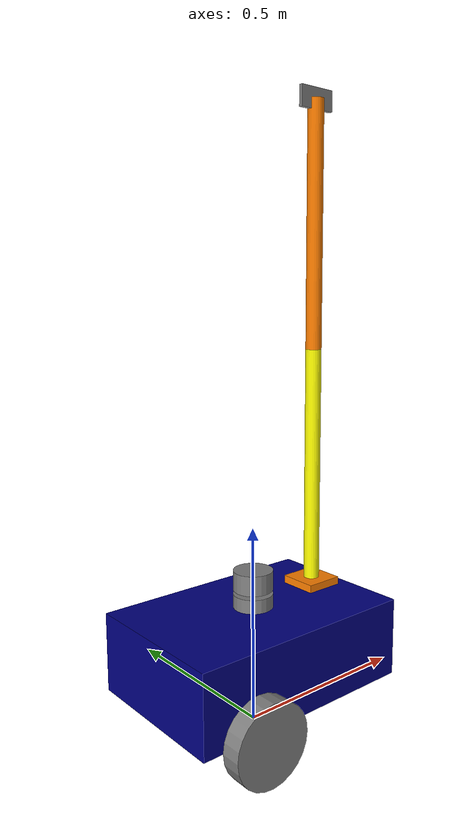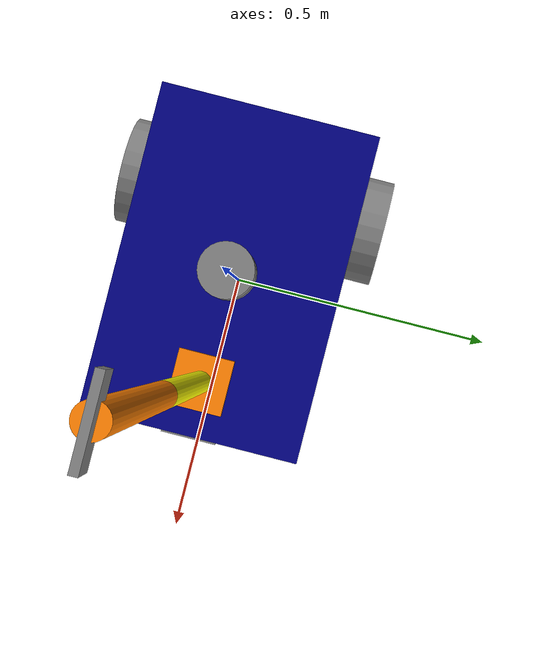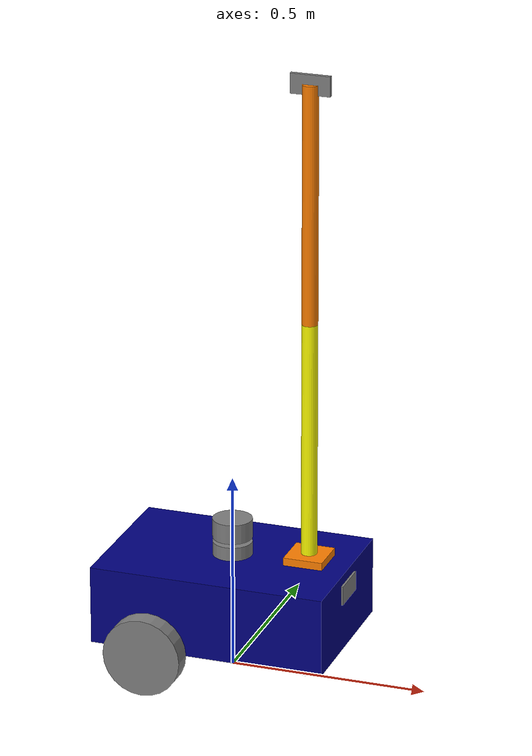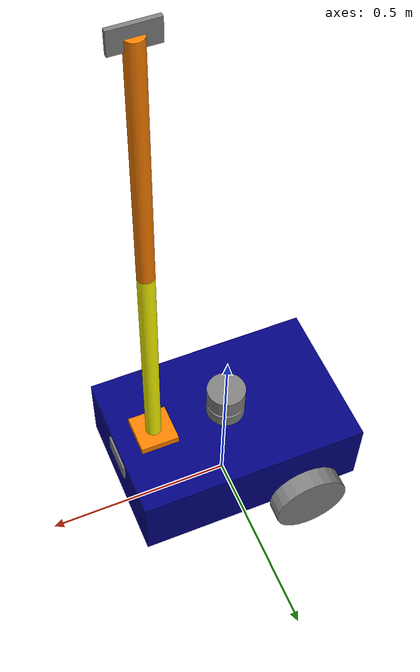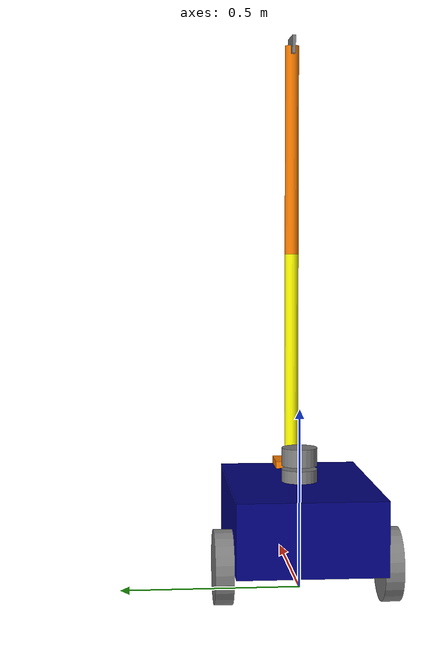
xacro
<?xml version="1.0"?>
<robot name="my_robot" xmlns:xacro="http://www.ros.org/wiki/xacro">

   <link name="base_footprint" />
    <xacro:include filename="common_properties.xacro" />
    <xacro:include filename="mobile_base.xacro" />
    <xacro:include filename="mobile_base_gazebo.xacro" />

    <xacro:include filename="camera.xacro" />
    <xacro:include filename="camera2.xacro" />
    <xacro:include filename="lidar.xacro" />
    <xacro:include filename="lidar2.xacro" />

    <xacro:include filename="arm.xacro" />
    <xacro:include filename="arm_gazebo.xacro" />

    <joint name="mobilebasearm_joint" type="fixed">
         <parent link="base_link"/>
         <child link="arm_base_link" />
         <origin xyz="0.2 0 ${base_height + 0.01}" rpy="0 0 ${pi / 2.0} " />
     </joint>

</robot>

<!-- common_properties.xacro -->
<robot xmlns:xacro="http://www.ros.org/wiki/xacro">

    <material name="blue">
        <color rgba="0 0 0.5 1" />
    </material>

    <material name="grey">
        <color rgba="0.5 0.5 0.5 1" />
    </material>

        <material name="red">
        <color rgba="0.5 0 0 1" />
    </material>

    <material name="orange">
  <color rgba="1 0.5 0 1"/>
</material>

<material name="yellow">
  <color rgba="1 1 0 1"/>
</material>

    <xacro:macro name="box_inertia" params="m l w h xyz rpy">
      <inertial>
        <origin xyz="${xyz}" rpy="${rpy}" />
        <mass value="${m}" />
        <inertia ixx="${(m/12) * (h*h +l*l)}" ixy="0" ixz="0"
                 iyy="${(m/12) * (w*w +l*l)}" iyz="0"
                 izz="${(m/12) * (w*w +h*h)}" />
      </inertial>
    </xacro:macro>

    <xacro:macro name="cylinder_inertia" params="m r h xyz rpy">
        <inertial>
            <origin xyz="${xyz}" rpy="${rpy}" />
            <mass value="${m}" />
            <inertia ixx="${(m/12) * (3*r*r + h*h)}" ixy="0" ixz="0"
                     iyy="${(m/12) * (3*r*r + h*h)}" iyz="0"
                     izz="${(m/2) * (r*r)}" />
        </inertial>
    </xacro:macro>

    <xacro:macro name="sphere_inertia" params="m r xyz rpy">
        <inertial>
            <origin xyz="${xyz}" rpy="${rpy}" />
            <mass value="${m}" />
            <inertia ixx="${(2/5) * m * r * r}" ixy="0" ixz="0"
                     iyy="${(2/5) * m * r * r}" iyz="0"
                     izz="${(2/5) * m * r * r}" />
        </inertial>
    </xacro:macro>

</robot>

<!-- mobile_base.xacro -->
<robot xmlns:xacro="http://www.ros.org/wiki/xacro">

    <xacro:property name="base_length" value="0.6" />
    <xacro:property name="base_width" value="0.4" />
    <xacro:property name="base_height" value="0.2" />
    <xacro:property name="wheel_radius" value="0.1" />
    <xacro:property name="wheel_length" value="0.05" />

    <link name="base_link">
        <visual>
            <geometry>
                <box size="${base_length} ${base_width} ${base_height}" />
            </geometry>
            <origin xyz="0 0 ${base_height / 2.0}" rpy="0 0 0" />
            <material name="blue" />
        </visual>
        <collision>
            <geometry>
                <box size="${base_length} ${base_width} ${base_height}" />
            </geometry>
            <origin xyz="0 0 ${base_height / 2.0}" rpy="0 0 0" />
        </collision>
        <xacro:box_inertia m="5.0" l="${2*base_length}" w="${2*base_width}" h="${2*base_height}"
                           xyz="0 0 ${base_height / 2.0}" rpy="0 0 0" />
    </link>

    <xacro:macro name="wheel_link" params="prefix">
        <link name="${prefix}_wheel_link">
            <visual>
                <geometry>
                    <cylinder radius="${wheel_radius}" length="${wheel_length}" />
                </geometry>
                <origin xyz="0 0 0" rpy="${pi / 2.0} 0 0" />
                <material name="grey" />
            </visual>
            <collision>
                <geometry>
                    <cylinder radius="${wheel_radius}" length="${wheel_length}" />
                </geometry>
                <origin xyz="0 0 0" rpy="${pi / 2.0} 0 0" />
            </collision>
            <xacro:cylinder_inertia m="1.0" r="${2*wheel_radius}" h="${2*wheel_length}"
                                    xyz="0 0 0" rpy="${pi / 2.0} 0 0" />
        </link>
    </xacro:macro>

    <xacro:wheel_link prefix="right" />
    <xacro:wheel_link prefix="left" />

    <link name="caster_wheel_link">
        <visual>
            <geometry>
                <sphere radius="${wheel_radius / 2.0}" />
            </geometry>
            <origin xyz="0 0 0" rpy="0 0 0" />
            <material name="grey" />
        </visual>
        <collision>
            <geometry>
                <sphere radius="${wheel_radius / 2.0}" />
            </geometry>
            <origin xyz="0 0 0" rpy="0 0 0" />
        </collision>
        <xacro:sphere_inertia m="0.5" r="${2*wheel_radius / 2.0}"
                              xyz="0 0 0" rpy="0 0 0" />
    </link>

    <joint name="base_joint" type="fixed">
        <parent link="base_footprint" />
        <child link="base_link" />
        <origin xyz="0 0 ${wheel_radius}" rpy="0 0 0"/>
    </joint>

    <joint name="base_right_wheel_joint" type="continuous">
        <parent link="base_link" />
        <child link="right_wheel_link" />
        <origin xyz="${-base_length / 4.0} ${-(base_width + wheel_length) / 2.0} 0" rpy="0 0 0" />
        <axis xyz="0 1 0" />
    </joint>

    <joint name="base_left_wheel_joint" type="continuous">
        <parent link="base_link" />
        <child link="left_wheel_link" />
        <origin xyz="${-base_length / 4.0} ${(base_width + wheel_length) / 2.0} 0" rpy="0 0 0" />
        <axis xyz="0 1 0" />
    </joint>

    <joint name="base_caster_wheel_joint" type="fixed">
        <parent link="base_link" />
        <child link="caster_wheel_link" />
        <origin xyz="${base_length / 3.0} 0 ${-wheel_radius / 2.0}" rpy="0 0 0" />
    </joint>

</robot>

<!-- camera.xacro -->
<robot xmlns:xacro="http://www.ros.org/wiki/xacro">

    <xacro:property name="camera_length" value="0.01"/>
    <xacro:property name="camera_width" value="0.1"/>
    <xacro:property name="camera_height" value="0.05"/>

     <link name="camera_link">
        <visual>
            <geometry>
                <box size="${camera_length} ${camera_width} ${camera_height}"/>
            </geometry>
            <material name="grey"/>
        </visual>
        <collision>
            <geometry>
                <box size="${camera_length} ${camera_width} ${camera_height}"/>
            </geometry>
        </collision>
        <xacro:box_inertia m="0.1" l="${camera_length}" w="${camera_width}" h="${camera_height}"
                           xyz="0 0 0" rpy="0 0 0"/>

     </link>

     <joint name="base_camera_joint" type="revolute">

         <parent link="hand_link"/>
         <child link="camera_link" />
         <origin xyz="0 0 0.6 " rpy="0 ${pi*2} 0" />
         <axis xyz="0 -1 0" />
        <limit lower="0" upper="${pi*2}" effort="200" velocity="100" />
        <dynamics friction="3.05" damping="1.0" />
     </joint>

     <link name="camera_link_optical">
     </link>

    <joint name="camera_optical_joint" type="fixed">
       <!-- these values have to be these values otherwise the gazebo camera
        image won't be aligned properly with the frame it is supposedly
        originating from -->
        <origin xyz="0 0 0" rpy="${-pi/2} 0 ${-pi/2}"/>
        <parent link="camera_link"/>
        <child link="camera_link_optical"/>
    </joint>

     <gazebo reference="camera_link">
     <material>Gazebo/ZincYellow</material>
     <sensor name="camera_sensor" type="camera">
     <pose>0 0 0 0 0 0</pose>
     <visualize>true</visualize>
     <update_rate>10.0</update_rate>

      <camera>
       <horizontal_fov>1.3962634</horizontal_fov>
       <image>
         <width>1280</width>
         <height>720</height>
         <format>R8G8B8</format>
       </image>
      </camera>

     <plugin name="camera_controller" filename="libgazebo_ros_camera.so">
      <frame_name>camera_link_optical</frame_name>
     </plugin>
     </sensor>
    </gazebo>

</robot>

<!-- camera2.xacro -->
<robot xmlns:xacro="http://www.ros.org/wiki/xacro">

    <xacro:property name="camera_length" value="0.01"/>
    <xacro:property name="camera_width" value="0.1"/>
    <xacro:property name="camera_height" value="0.05"/>

     <link name="camera_link2">
        <visual>
            <geometry>
                <box size="${camera_length} ${camera_width} ${camera_height}"/>
            </geometry>
            <material name="grey"/>
        </visual>
        <collision>
            <geometry>
                <box size="${camera_length} ${camera_width} ${camera_height}"/>
            </geometry>
        </collision>
        <xacro:box_inertia m="0.1" l="${camera_length}" w="${camera_width}" h="${camera_height}"
                           xyz="0 0 0" rpy="0 0 0"/>

     </link>

     <joint name="base_camera_joint2" type="fixed">

         <parent link="base_link"/>
         <child link="camera_link2" />
         <origin xyz="${base_length/2} 0 ${(base_height / 2.0)+ 0.05}" rpy="0 0 0" />

     </joint>

     <link name="camera_link_optical2">
     </link>

    <joint name="camera_optical_joint2" type="fixed">
       <!-- these values have to be these values otherwise the gazebo camera
        image won't be aligned properly with the frame it is supposedly
        originating from -->
        <origin xyz="0 0 0" rpy="${-pi/2} 0 ${-pi/2}"/>
        <parent link="camera_link2"/>
        <child link="camera_link_optical2"/>
    </joint>

     <gazebo reference="camera_link2">
  <material>Gazebo/ZincYellow</material>
  <sensor name="camera_sensor2" type="depth">
    <pose>0 0 0 0 0 0</pose>
    <visualize>true</visualize>
    <update_rate>10.0</update_rate>
    <camera>
      <horizontal_fov>1.3962634</horizontal_fov>
      <image>
        <width>1280</width>
        <height>720</height>
        <format>R8G8B8</format>
      </image>
      <clip>
        <near>0.01</near>
        <far>20</far>
      </clip>
    </camera>
    <plugin name="depth_camera_controller2" filename="libgazebo_ros_camera.so">
      <frame_name>camera_link_optical2</frame_name>
    </plugin>
  </sensor>
</gazebo>

</robot>

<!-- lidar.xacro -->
<robot xmlns:xacro="http://www.ros.org/wiki/xacro">

    <xacro:property name="lidar_length" value="0.05"/>
    <xacro:property name="lidar_radius" value="0.05"/>

    <link name="lidar_link">

            <visual>
                <geometry>
                    <cylinder radius="${lidar_radius}" length="${lidar_length}" />
                </geometry>
                <origin xyz="0 0 0" rpy="0 0 0" />
                <material name="grey" />
            </visual>
            <collision>
                <geometry>
                    <cylinder radius="${lidar_radius}" length="${lidar_length}" />
                </geometry>
                <origin xyz="0 0 0" rpy="0 0 0" />
            </collision>
            <xacro:cylinder_inertia m="1.0" r="${2*lidar_radius}" h="${2*lidar_length}"
                                    xyz="0 0 0" rpy="${pi / 2.0} 0 0" />

     </link>

     <joint name="base_lidar_joint" type="fixed">
         <parent link="base_link"/>
         <child link="lidar_link" />
         <origin xyz="0 0 ${base_height + 0.01}" rpy="0 0 ${pi / 2.0} " />
     </joint>

    <gazebo reference="lidar_link">
        <material>Gazebo/Red</material>
        <self_collide>false</self_collide>
        <sensor type="ray" name="head_hokuyo_sensor">
             <pose>10 0 10 0 0 0</pose>
             <visualize>true</visualize>
             <update_rate>30</update_rate>
            <ray>
             <scan>
              <horizontal>
                <samples>720</samples>
                <resolution>1</resolution>
                <min_angle>-0.0872665</min_angle>
                <max_angle>0.0872665</max_angle>
               </horizontal>
              </scan>
               <range>
                    <min>0.10</min>
                    <max>10.0</max>
                   <resolution>0.01</resolution>
                 </range>
                 <noise>
                    <type>gaussian</type>
                    <mean>0.0</mean>
                    <stddev>0.01</stddev>
                 </noise>
            </ray>
            <plugin name="gazebo_ros_ray_sensor" filename="libgazebo_ros_ray_sensor.so">
                   <topic_name>/scan</topic_name>
                   <frame_name>lidar_link</frame_name>
                   <output_type>sensor_msgs/LaserScan</output_type>
            </plugin>

        </sensor>

    </gazebo>

</robot>

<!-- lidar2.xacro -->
<robot xmlns:xacro="http://www.ros.org/wiki/xacro">

    <xacro:property name="lidar_length2" value="0.05"/>
    <xacro:property name="lidar_radius2" value="0.05"/>

    <link name="lidar_link2">

            <visual>
                <geometry>
                    <cylinder radius="${lidar_radius2}" length="${lidar_length2}" />
                </geometry>
                <origin xyz="0 0 0" rpy="0 0 0" />
                <material name="grey" />
            </visual>
            <collision>
                <geometry>
                    <cylinder radius="${lidar_radius2}" length="${lidar_length2}" />
                </geometry>
                <origin xyz="0 0 0" rpy="0 0 0" />
            </collision>
            <xacro:cylinder_inertia m="1.0" r="${2*lidar_radius2}" h="${2*lidar_length2}"
                                    xyz="0 0 0" rpy="${pi / 2.0} 0 0" />

     </link>

     <joint name="base_lidar_joint2" type="fixed">
         <parent link="lidar_link"/>
         <child link="lidar_link2" />
         <origin xyz="0 0 ${lidar_length2 + 0.01}" rpy="0 0 ${-pi / 2.0} " />
     </joint>

    <gazebo reference="lidar_link2">
        <material>Gazebo/Red</material>
        <self_collide>false</self_collide>
        <sensor type="ray" name="head_hokuyo_sensor1">
             <pose>10 0 10 0 0 0</pose>
             <visualize>false</visualize>
             <update_rate>30</update_rate>
            <ray>
             <scan>
              <horizontal>
                <samples>720</samples>
                <resolution>1</resolution>
                <min_angle>-3.14</min_angle>
                <max_angle>3.14</max_angle>
               </horizontal>
              </scan>
               <range>
                    <min>0.10</min>
                    <max>10.0</max>
                   <resolution>0.01</resolution>
                 </range>
                 <noise>
                    <type>gaussian</type>
                    <mean>0.0</mean>
                    <stddev>0.01</stddev>
                 </noise>
            </ray>
            <plugin name="gazebo_ros_ray_sensor2" filename="libgazebo_ros_ray_sensor.so">
                   <topic_name>/scan</topic_name>
                   <frame_name>lidar_link2</frame_name>
                   <output_type>sensor_msgs/LaserScan</output_type>
            </plugin>

        </sensor>

    </gazebo>

</robot>

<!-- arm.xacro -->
<robot xmlns:xacro="http://www.ros.org/wiki/xacro">

    <xacro:property name="arm_base_length" value="0.1" />
    <xacro:property name="arm_base_width" value="0.1" />
    <xacro:property name="arm_base_height" value="0.02" />
    <xacro:property name="forearm_radius" value="0.02" />
    <xacro:property name="forearm_length" value="0.6" />
    <xacro:property name="hand_radius" value="0.02" />
    <xacro:property name="hand_length" value="0.6" />

    <link name="arm_base_link">
        <visual>
            <geometry>
                <box size="${arm_base_length} ${arm_base_width} ${arm_base_height}" />
            </geometry>
            <origin xyz="0 0 ${arm_base_height / 2.0}" rpy="0 0 0" />
            <material name="orange" />
        </visual>
        <collision>
            <geometry>
                <box size="${arm_base_length} ${arm_base_width} ${arm_base_height}" />
            </geometry>
            <origin xyz="0 0 ${arm_base_height / 2.0}" rpy="0 0 0" />
        </collision>
        <xacro:box_inertia m="0.3" l="${2*arm_base_length}" w="${2*arm_base_width}" h="${2*arm_base_height}"
                           xyz="0 0 ${arm_base_height / 2.0}" rpy="0 0 0" />
    </link>

    <link name="forearm_link">
        <visual>
            <geometry>
                <cylinder radius="${forearm_radius}" length="${forearm_length}" />
            </geometry>
            <origin xyz="0 0 ${forearm_length / 2.0}" rpy="0 0 0" />
            <material name="yellow" />
        </visual>
        <collision>
            <geometry>
                <cylinder radius="${forearm_radius}" length="${forearm_length}" />
            </geometry>
            <origin xyz="0 0 ${forearm_length / 2.0}" rpy="0 0 0" />
        </collision>
        <xacro:cylinder_inertia m="0.3" r="${2*forearm_radius}" h="${2*forearm_length}"
                                xyz="0 0 ${forearm_length / 2.0}" rpy="0 0 0" />
    </link>

    <link name="hand_link">
        <visual>
            <geometry>
                <cylinder radius="${hand_radius}" length="${hand_length}" />
            </geometry>
            <origin xyz="0 0 ${hand_length / 2.0}" rpy="0 0 0" />
            <material name="orange" />
        </visual>
        <collision>
             <geometry>
                <cylinder radius="${hand_radius}" length="${hand_length}" />
            </geometry>
            <origin xyz="0 0 ${hand_length / 2.0}" rpy="0 0 0" />
        </collision>
        <xacro:cylinder_inertia m="0.3" r="${2*hand_radius}" h="${2*hand_length}"
                                xyz="0 0 ${hand_length / 2.0}" rpy="0 0 0" />
    </link>

    <joint name="arm_base_forearm_joint" type="revolute">
        <parent link="arm_base_link" />
        <child link="forearm_link" />
        <origin xyz="0 0 ${arm_base_height}" rpy="0 0 0" />
        <axis xyz="0 1 0" />
        <limit lower="0" upper="${pi*2}" effort="200" velocity="100" />
        <dynamics friction="3.05" damping="1.0" />
    </joint>

    <joint name="forearm_hand_joint" type="revolute">
        <parent link="forearm_link" />
        <child link="hand_link" />
        <origin xyz="0 0 ${forearm_length}" rpy="0 0 0" />
        <axis xyz="0 1 0" />
        <limit lower="0" upper="${pi*2}" effort="200" velocity="100" />
        <dynamics friction="3.05" damping="1.0" />
    </joint>

</robot>
